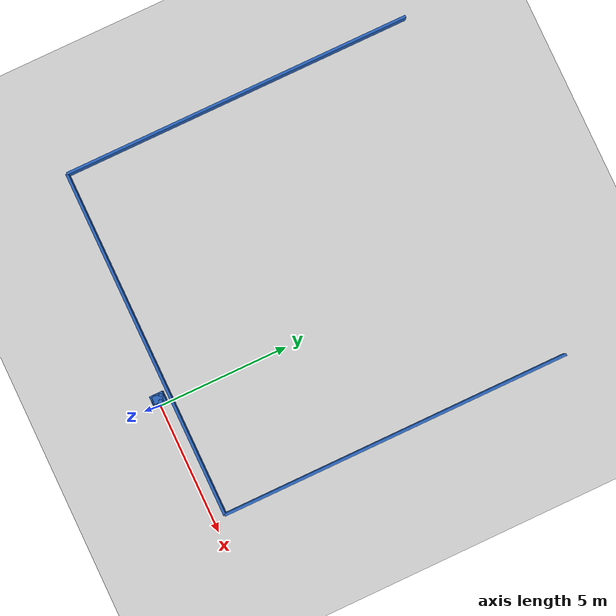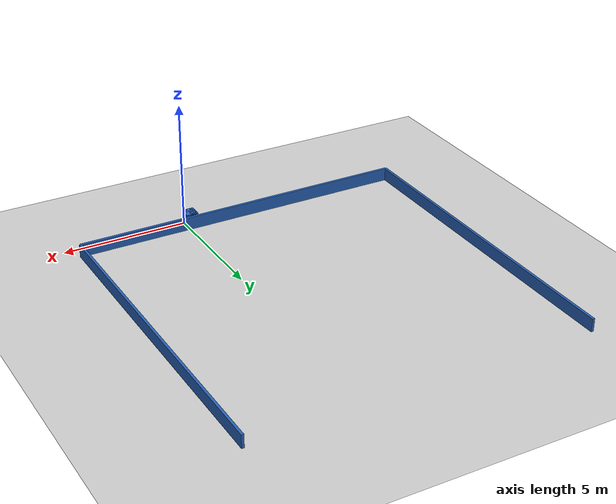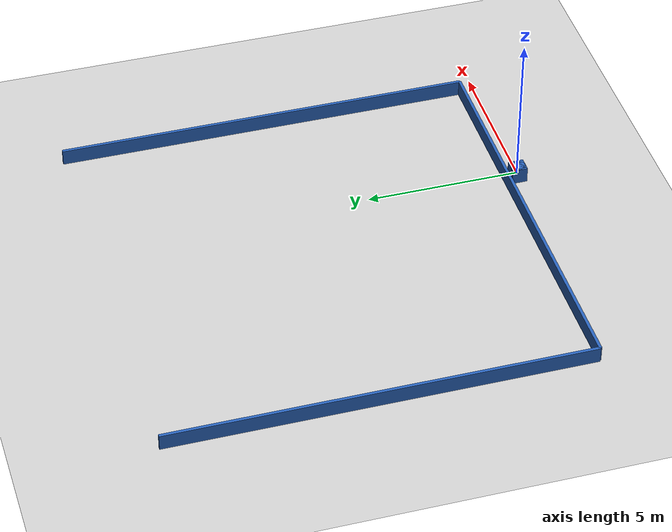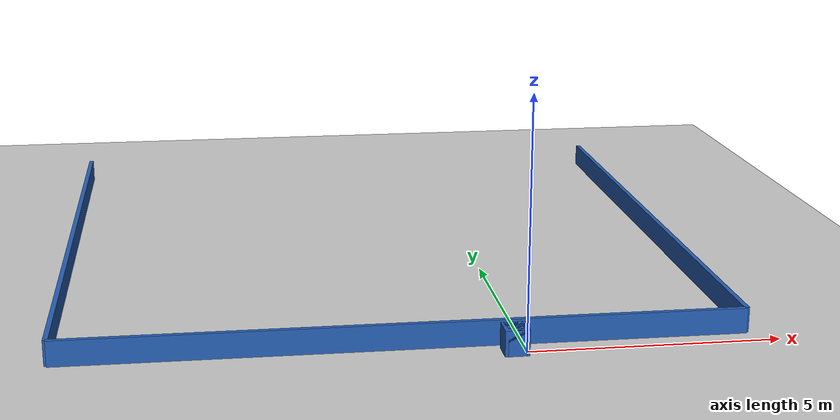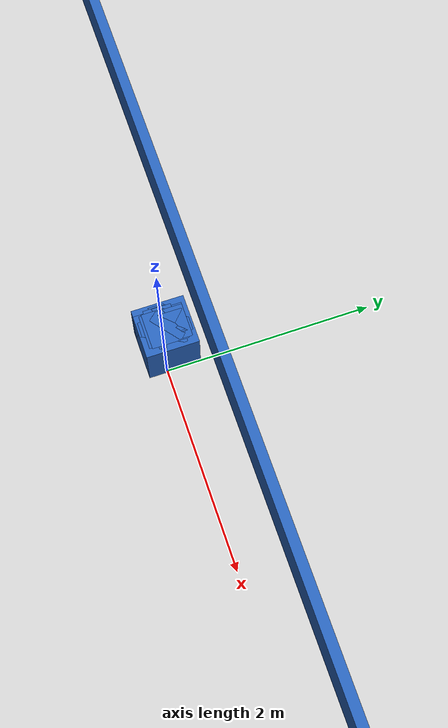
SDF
<?xml version="1.0" ?>
    <sdf version="1.5">
      <world name="default">
        <!-- A global light source -->
        <include>
          <uri>model://sun</uri>
        </include>
        <!-- A ground plane -->
        <include>
          <uri>model://ground_plane</uri>
        </include>

    <model name='libopen_space_final_T2B_77_83'>
      <static>1</static>
      <pose frame=''>-0.225000 0.075000 0.000000 0.000000 0.000000 0.000000</pose>
      <link name='link'>
        <inertial>
          <mass>1</mass>
          <inertia>
            <ixx>0.145833</ixx>
            <ixy>0</ixy>
            <ixz>0</ixz>
            <iyy>0.145833</iyy>
            <iyz>0</iyz>
            <izz>0.125</izz>
          </inertia>
        </inertial>
        <collision name='collision'>
          <geometry>
            <box>
              <size>0.48 0.50 1</size>
            </box>
          </geometry>
          <max_contacts>10</max_contacts>
          <surface>
            <contact>
              <ode/>
            </contact>
            <bounce/>
            <friction>
              <torsional>
                <ode/>
              </torsional>
              <ode/>
            </friction>
          </surface>
        </collision>
        <visual name='visual'>
          <geometry>
            <box>
              <size>0.48 0.50 1</size>
            </box>
          </geometry>
	    <material>
              <ambient>0.152000 0.379000 0.720000 1</ambient>
	      <diffuse>0.152000 0.379000 0.720000 1</diffuse>
          </material>
          <material>
            <script>
              <name>Gazebo/Grey</name>
              <uri>file://media/materials/scripts/gazebo.material</uri>
            </script>
          </material>
        </visual>
        <self_collide>0</self_collide>
        <kinematic>0</kinematic>
        <gravity>1</gravity>
      </link>
      <plugin name='libopen_space_final_T2B_77_83' filename='libopen_space_final_T2B_77_83.so'/>
    </model>

    <model name='libopen_space_final_T2B_148_40'>
      <static>1</static>
      <pose frame=''>-0.225000 0.075000 0.000000 0.000000 0.000000 0.000000</pose>
      <link name='link'>
        <inertial>
          <mass>1</mass>
          <inertia>
            <ixx>0.145833</ixx>
            <ixy>0</ixy>
            <ixz>0</ixz>
            <iyy>0.145833</iyy>
            <iyz>0</iyz>
            <izz>0.125</izz>
          </inertia>
        </inertial>
        <collision name='collision'>
          <geometry>
            <box>
              <size>0.22 0.46 1</size>
            </box>
          </geometry>
          <max_contacts>10</max_contacts>
          <surface>
            <contact>
              <ode/>
            </contact>
            <bounce/>
            <friction>
              <torsional>
                <ode/>
              </torsional>
              <ode/>
            </friction>
          </surface>
        </collision>
        <visual name='visual'>
          <geometry>
            <box>
              <size>0.22 0.46 1</size>
            </box>
          </geometry>
	    <material>
              <ambient>0.152000 0.379000 0.720000 1</ambient>
	      <diffuse>0.152000 0.379000 0.720000 1</diffuse>
          </material>
          <material>
            <script>
              <name>Gazebo/Grey</name>
              <uri>file://media/materials/scripts/gazebo.material</uri>
            </script>
          </material>
        </visual>
        <self_collide>0</self_collide>
        <kinematic>0</kinematic>
        <gravity>1</gravity>
      </link>
      <plugin name='libopen_space_final_T2B_148_40' filename='libopen_space_final_T2B_148_40.so'/>
    </model>

    <model name='libopen_space_final_T2B_94_31'>
      <static>1</static>
      <pose frame=''>-0.225000 0.075000 0.000000 0.000000 0.000000 0.000000</pose>
      <link name='link'>
        <inertial>
          <mass>1</mass>
          <inertia>
            <ixx>0.145833</ixx>
            <ixy>0</ixy>
            <ixz>0</ixz>
            <iyy>0.145833</iyy>
            <iyz>0</iyz>
            <izz>0.125</izz>
          </inertia>
        </inertial>
        <collision name='collision'>
          <geometry>
            <box>
              <size>0.32 0.23 1</size>
            </box>
          </geometry>
          <max_contacts>10</max_contacts>
          <surface>
            <contact>
              <ode/>
            </contact>
            <bounce/>
            <friction>
              <torsional>
                <ode/>
              </torsional>
              <ode/>
            </friction>
          </surface>
        </collision>
        <visual name='visual'>
          <geometry>
            <box>
              <size>0.32 0.23 1</size>
            </box>
          </geometry>
	    <material>
              <ambient>0.152000 0.379000 0.720000 1</ambient>
	      <diffuse>0.152000 0.379000 0.720000 1</diffuse>
          </material>
          <material>
            <script>
              <name>Gazebo/Grey</name>
              <uri>file://media/materials/scripts/gazebo.material</uri>
            </script>
          </material>
        </visual>
        <self_collide>0</self_collide>
        <kinematic>0</kinematic>
        <gravity>1</gravity>
      </link>
      <plugin name='libopen_space_final_T2B_94_31' filename='libopen_space_final_T2B_94_31.so'/>
    </model>

    <model name='libopen_space_final_T2B_61_96'>
      <static>1</static>
      <pose frame=''>-0.225000 0.075000 0.000000 0.000000 0.000000 0.000000</pose>
      <link name='link'>
        <inertial>
          <mass>1</mass>
          <inertia>
            <ixx>0.145833</ixx>
            <ixy>0</ixy>
            <ixz>0</ixz>
            <iyy>0.145833</iyy>
            <iyz>0</iyz>
            <izz>0.125</izz>
          </inertia>
        </inertial>
        <collision name='collision'>
          <geometry>
            <box>
              <size>0.35 0.35 1</size>
            </box>
          </geometry>
          <max_contacts>10</max_contacts>
          <surface>
            <contact>
              <ode/>
            </contact>
            <bounce/>
            <friction>
              <torsional>
                <ode/>
              </torsional>
              <ode/>
            </friction>
          </surface>
        </collision>
        <visual name='visual'>
          <geometry>
            <box>
              <size>0.35 0.35 1</size>
            </box>
          </geometry>
	    <material>
              <ambient>0.152000 0.379000 0.720000 1</ambient>
	      <diffuse>0.152000 0.379000 0.720000 1</diffuse>
          </material>
          <material>
            <script>
              <name>Gazebo/Grey</name>
              <uri>file://media/materials/scripts/gazebo.material</uri>
            </script>
          </material>
        </visual>
        <self_collide>0</self_collide>
        <kinematic>0</kinematic>
        <gravity>1</gravity>
      </link>
      <plugin name='libopen_space_final_T2B_61_96' filename='libopen_space_final_T2B_61_96.so'/>
    </model>

    <model name='libopen_space_final_T2B_91_57'>
      <static>1</static>
      <pose frame=''>-0.225000 0.075000 0.000000 0.000000 0.000000 0.000000</pose>
      <link name='link'>
        <inertial>
          <mass>1</mass>
          <inertia>
            <ixx>0.145833</ixx>
            <ixy>0</ixy>
            <ixz>0</ixz>
            <iyy>0.145833</iyy>
            <iyz>0</iyz>
            <izz>0.125</izz>
          </inertia>
        </inertial>
        <collision name='collision'>
          <geometry>
            <box>
              <size>0.36 0.42 1</size>
            </box>
          </geometry>
          <max_contacts>10</max_contacts>
          <surface>
            <contact>
              <ode/>
            </contact>
            <bounce/>
            <friction>
              <torsional>
                <ode/>
              </torsional>
              <ode/>
            </friction>
          </surface>
        </collision>
        <visual name='visual'>
          <geometry>
            <box>
              <size>0.36 0.42 1</size>
            </box>
          </geometry>
	    <material>
              <ambient>0.152000 0.379000 0.720000 1</ambient>
	      <diffuse>0.152000 0.379000 0.720000 1</diffuse>
          </material>
          <material>
            <script>
              <name>Gazebo/Grey</name>
              <uri>file://media/materials/scripts/gazebo.material</uri>
            </script>
          </material>
        </visual>
        <self_collide>0</self_collide>
        <kinematic>0</kinematic>
        <gravity>1</gravity>
      </link>
      <plugin name='libopen_space_final_T2B_91_57' filename='libopen_space_final_T2B_91_57.so'/>
    </model>

    <model name='libopen_space_final_T2B_51_1'>
      <static>1</static>
      <pose frame=''>-0.225000 0.075000 0.000000 0.000000 0.000000 0.000000</pose>
      <link name='link'>
        <inertial>
          <mass>1</mass>
          <inertia>
            <ixx>0.145833</ixx>
            <ixy>0</ixy>
            <ixz>0</ixz>
            <iyy>0.145833</iyy>
            <iyz>0</iyz>
            <izz>0.125</izz>
          </inertia>
        </inertial>
        <collision name='collision'>
          <geometry>
            <box>
              <size>0.44 0.19 1</size>
            </box>
          </geometry>
          <max_contacts>10</max_contacts>
          <surface>
            <contact>
              <ode/>
            </contact>
            <bounce/>
            <friction>
              <torsional>
                <ode/>
              </torsional>
              <ode/>
            </friction>
          </surface>
        </collision>
        <visual name='visual'>
          <geometry>
            <box>
              <size>0.44 0.19 1</size>
            </box>
          </geometry>
	    <material>
              <ambient>0.152000 0.379000 0.720000 1</ambient>
	      <diffuse>0.152000 0.379000 0.720000 1</diffuse>
          </material>
          <material>
            <script>
              <name>Gazebo/Grey</name>
              <uri>file://media/materials/scripts/gazebo.material</uri>
            </script>
          </material>
        </visual>
        <self_collide>0</self_collide>
        <kinematic>0</kinematic>
        <gravity>1</gravity>
      </link>
      <plugin name='libopen_space_final_T2B_51_1' filename='libopen_space_final_T2B_51_1.so'/>
    </model>

    <model name='libopen_space_final_T2B_118_43'>
      <static>1</static>
      <pose frame=''>-0.225000 0.075000 0.000000 0.000000 0.000000 0.000000</pose>
      <link name='link'>
        <inertial>
          <mass>1</mass>
          <inertia>
            <ixx>0.145833</ixx>
            <ixy>0</ixy>
            <ixz>0</ixz>
            <iyy>0.145833</iyy>
            <iyz>0</iyz>
            <izz>0.125</izz>
          </inertia>
        </inertial>
        <collision name='collision'>
          <geometry>
            <box>
              <size>0.33 0.40 1</size>
            </box>
          </geometry>
          <max_contacts>10</max_contacts>
          <surface>
            <contact>
              <ode/>
            </contact>
            <bounce/>
            <friction>
              <torsional>
                <ode/>
              </torsional>
              <ode/>
            </friction>
          </surface>
        </collision>
        <visual name='visual'>
          <geometry>
            <box>
              <size>0.33 0.40 1</size>
            </box>
          </geometry>
	    <material>
              <ambient>0.152000 0.379000 0.720000 1</ambient>
	      <diffuse>0.152000 0.379000 0.720000 1</diffuse>
          </material>
          <material>
            <script>
              <name>Gazebo/Grey</name>
              <uri>file://media/materials/scripts/gazebo.material</uri>
            </script>
          </material>
        </visual>
        <self_collide>0</self_collide>
        <kinematic>0</kinematic>
        <gravity>1</gravity>
      </link>
      <plugin name='libopen_space_final_T2B_118_43' filename='libopen_space_final_T2B_118_43.so'/>
    </model>

    <model name='libopen_space_final_T2B_120_45'>
      <static>1</static>
      <pose frame=''>-0.225000 0.075000 0.000000 0.000000 0.000000 0.000000</pose>
      <link name='link'>
        <inertial>
          <mass>1</mass>
          <inertia>
            <ixx>0.145833</ixx>
            <ixy>0</ixy>
            <ixz>0</ixz>
            <iyy>0.145833</iyy>
            <iyz>0</iyz>
            <izz>0.125</izz>
          </inertia>
        </inertial>
        <collision name='collision'>
          <geometry>
            <box>
              <size>0.20 0.36 1</size>
            </box>
          </geometry>
          <max_contacts>10</max_contacts>
          <surface>
            <contact>
              <ode/>
            </contact>
            <bounce/>
            <friction>
              <torsional>
                <ode/>
              </torsional>
              <ode/>
            </friction>
          </surface>
        </collision>
        <visual name='visual'>
          <geometry>
            <box>
              <size>0.20 0.36 1</size>
            </box>
          </geometry>
	    <material>
              <ambient>0.152000 0.379000 0.720000 1</ambient>
	      <diffuse>0.152000 0.379000 0.720000 1</diffuse>
          </material>
          <material>
            <script>
              <name>Gazebo/Grey</name>
              <uri>file://media/materials/scripts/gazebo.material</uri>
            </script>
          </material>
        </visual>
        <self_collide>0</self_collide>
        <kinematic>0</kinematic>
        <gravity>1</gravity>
      </link>
      <plugin name='libopen_space_final_T2B_120_45' filename='libopen_space_final_T2B_120_45.so'/>
    </model>

    <model name='libopen_space_final_T2B_83_61'>
      <static>1</static>
      <pose frame=''>-0.225000 0.075000 0.000000 0.000000 0.000000 0.000000</pose>
      <link name='link'>
        <inertial>
          <mass>1</mass>
          <inertia>
            <ixx>0.145833</ixx>
            <ixy>0</ixy>
            <ixz>0</ixz>
            <iyy>0.145833</iyy>
            <iyz>0</iyz>
            <izz>0.125</izz>
          </inertia>
        </inertial>
        <collision name='collision'>
          <geometry>
            <box>
              <size>0.36 0.50 1</size>
            </box>
          </geometry>
          <max_contacts>10</max_contacts>
          <surface>
            <contact>
              <ode/>
            </contact>
            <bounce/>
            <friction>
              <torsional>
                <ode/>
              </torsional>
              <ode/>
            </friction>
          </surface>
        </collision>
        <visual name='visual'>
          <geometry>
            <box>
              <size>0.36 0.50 1</size>
            </box>
          </geometry>
	    <material>
              <ambient>0.152000 0.379000 0.720000 1</ambient>
	      <diffuse>0.152000 0.379000 0.720000 1</diffuse>
          </material>
          <material>
            <script>
              <name>Gazebo/Grey</name>
              <uri>file://media/materials/scripts/gazebo.material</uri>
            </script>
          </material>
        </visual>
        <self_collide>0</self_collide>
        <kinematic>0</kinematic>
        <gravity>1</gravity>
      </link>
      <plugin name='libopen_space_final_T2B_83_61' filename='libopen_space_final_T2B_83_61.so'/>
    </model>

    <model name='libopen_space_final_T2B_112_28'>
      <static>1</static>
      <pose frame=''>-0.225000 0.075000 0.000000 0.000000 0.000000 0.000000</pose>
      <link name='link'>
        <inertial>
          <mass>1</mass>
          <inertia>
            <ixx>0.145833</ixx>
            <ixy>0</ixy>
            <ixz>0</ixz>
            <iyy>0.145833</iyy>
            <iyz>0</iyz>
            <izz>0.125</izz>
          </inertia>
        </inertial>
        <collision name='collision'>
          <geometry>
            <box>
              <size>0.33 0.42 1</size>
            </box>
          </geometry>
          <max_contacts>10</max_contacts>
          <surface>
            <contact>
              <ode/>
            </contact>
            <bounce/>
            <friction>
              <torsional>
                <ode/>
              </torsional>
              <ode/>
            </friction>
          </surface>
        </collision>
        <visual name='visual'>
          <geometry>
            <box>
              <size>0.33 0.42 1</size>
            </box>
          </geometry>
	    <material>
              <ambient>0.152000 0.379000 0.720000 1</ambient>
	      <diffuse>0.152000 0.379000 0.720000 1</diffuse>
          </material>
          <material>
            <script>
              <name>Gazebo/Grey</name>
              <uri>file://media/materials/scripts/gazebo.material</uri>
            </script>
          </material>
        </visual>
        <self_collide>0</self_collide>
        <kinematic>0</kinematic>
        <gravity>1</gravity>
      </link>
      <plugin name='libopen_space_final_T2B_112_28' filename='libopen_space_final_T2B_112_28.so'/>
    </model>

    <model name='libopen_space_final_T2B_125_67'>
      <static>1</static>
      <pose frame=''>-0.225000 0.075000 0.000000 0.000000 0.000000 0.000000</pose>
      <link name='link'>
        <inertial>
          <mass>1</mass>
          <inertia>
            <ixx>0.145833</ixx>
            <ixy>0</ixy>
            <ixz>0</ixz>
            <iyy>0.145833</iyy>
            <iyz>0</iyz>
            <izz>0.125</izz>
          </inertia>
        </inertial>
        <collision name='collision'>
          <geometry>
            <box>
              <size>0.40 0.23 1</size>
            </box>
          </geometry>
          <max_contacts>10</max_contacts>
          <surface>
            <contact>
              <ode/>
            </contact>
            <bounce/>
            <friction>
              <torsional>
                <ode/>
              </torsional>
              <ode/>
            </friction>
          </surface>
        </collision>
        <visual name='visual'>
          <geometry>
            <box>
              <size>0.40 0.23 1</size>
            </box>
          </geometry>
	    <material>
              <ambient>0.152000 0.379000 0.720000 1</ambient>
	      <diffuse>0.152000 0.379000 0.720000 1</diffuse>
          </material>
          <material>
            <script>
              <name>Gazebo/Grey</name>
              <uri>file://media/materials/scripts/gazebo.material</uri>
            </script>
          </material>
        </visual>
        <self_collide>0</self_collide>
        <kinematic>0</kinematic>
        <gravity>1</gravity>
      </link>
      <plugin name='libopen_space_final_T2B_125_67' filename='libopen_space_final_T2B_125_67.so'/>
    </model>

    <model name='libopen_space_final_T2B_103_35'>
      <static>1</static>
      <pose frame=''>-0.225000 0.075000 0.000000 0.000000 0.000000 0.000000</pose>
      <link name='link'>
        <inertial>
          <mass>1</mass>
          <inertia>
            <ixx>0.145833</ixx>
            <ixy>0</ixy>
            <ixz>0</ixz>
            <iyy>0.145833</iyy>
            <iyz>0</iyz>
            <izz>0.125</izz>
          </inertia>
        </inertial>
        <collision name='collision'>
          <geometry>
            <box>
              <size>0.41 0.30 1</size>
            </box>
          </geometry>
          <max_contacts>10</max_contacts>
          <surface>
            <contact>
              <ode/>
            </contact>
            <bounce/>
            <friction>
              <torsional>
                <ode/>
              </torsional>
              <ode/>
            </friction>
          </surface>
        </collision>
        <visual name='visual'>
          <geometry>
            <box>
              <size>0.41 0.30 1</size>
            </box>
          </geometry>
	    <material>
              <ambient>0.152000 0.379000 0.720000 1</ambient>
	      <diffuse>0.152000 0.379000 0.720000 1</diffuse>
          </material>
          <material>
            <script>
              <name>Gazebo/Grey</name>
              <uri>file://media/materials/scripts/gazebo.material</uri>
            </script>
          </material>
        </visual>
        <self_collide>0</self_collide>
        <kinematic>0</kinematic>
        <gravity>1</gravity>
      </link>
      <plugin name='libopen_space_final_T2B_103_35' filename='libopen_space_final_T2B_103_35.so'/>
    </model>

    <model name='libopen_space_final_T2B_57_87'>
      <static>1</static>
      <pose frame=''>-0.225000 0.075000 0.000000 0.000000 0.000000 0.000000</pose>
      <link name='link'>
        <inertial>
          <mass>1</mass>
          <inertia>
            <ixx>0.145833</ixx>
            <ixy>0</ixy>
            <ixz>0</ixz>
            <iyy>0.145833</iyy>
            <iyz>0</iyz>
            <izz>0.125</izz>
          </inertia>
        </inertial>
        <collision name='collision'>
          <geometry>
            <box>
              <size>0.25 0.39 1</size>
            </box>
          </geometry>
          <max_contacts>10</max_contacts>
          <surface>
            <contact>
              <ode/>
            </contact>
            <bounce/>
            <friction>
              <torsional>
                <ode/>
              </torsional>
              <ode/>
            </friction>
          </surface>
        </collision>
        <visual name='visual'>
          <geometry>
            <box>
              <size>0.25 0.39 1</size>
            </box>
          </geometry>
	    <material>
              <ambient>0.152000 0.379000 0.720000 1</ambient>
	      <diffuse>0.152000 0.379000 0.720000 1</diffuse>
          </material>
          <material>
            <script>
              <name>Gazebo/Grey</name>
              <uri>file://media/materials/scripts/gazebo.material</uri>
            </script>
          </material>
        </visual>
        <self_collide>0</self_collide>
        <kinematic>0</kinematic>
        <gravity>1</gravity>
      </link>
      <plugin name='libopen_space_final_T2B_57_87' filename='libopen_space_final_T2B_57_87.so'/>
    </model>

    <model name='libopen_space_final_T2B_112_54'>
      <static>1</static>
      <pose frame=''>-0.225000 0.075000 0.000000 0.000000 0.000000 0.000000</pose>
      <link name='link'>
        <inertial>
          <mass>1</mass>
          <inertia>
            <ixx>0.145833</ixx>
            <ixy>0</ixy>
            <ixz>0</ixz>
            <iyy>0.145833</iyy>
            <iyz>0</iyz>
            <izz>0.125</izz>
          </inertia>
        </inertial>
        <collision name='collision'>
          <geometry>
            <box>
              <size>0.15 0.14 1</size>
            </box>
          </geometry>
          <max_contacts>10</max_contacts>
          <surface>
            <contact>
              <ode/>
            </contact>
            <bounce/>
            <friction>
              <torsional>
                <ode/>
              </torsional>
              <ode/>
            </friction>
          </surface>
        </collision>
        <visual name='visual'>
          <geometry>
            <box>
              <size>0.15 0.14 1</size>
            </box>
          </geometry>
	    <material>
              <ambient>0.152000 0.379000 0.720000 1</ambient>
	      <diffuse>0.152000 0.379000 0.720000 1</diffuse>
          </material>
          <material>
            <script>
              <name>Gazebo/Grey</name>
              <uri>file://media/materials/scripts/gazebo.material</uri>
            </script>
          </material>
        </visual>
        <self_collide>0</self_collide>
        <kinematic>0</kinematic>
        <gravity>1</gravity>
      </link>
      <plugin name='libopen_space_final_T2B_112_54' filename='libopen_space_final_T2B_112_54.so'/>
    </model>

        <model name='bottom_wall'>
          <static>1</static>
          <pose frame=''>-2.25 0.5 0.000000 0.000000 0.000000 1.57079632</pose>
          <link name='link'>
            <inertial>
            <mass>1</mass>
            <inertia>
              <ixx>0.145833</ixx>
              <ixy>0</ixy>
              <ixz>0</ixz>
              <iyy>0.145833</iyy>
              <iyz>0</iyz>
              <izz>0.125</izz>
            </inertia>
            </inertial>
            <collision name='collision'>
            <geometry>
              <box>
              <size>0.1 13.5 1</size>
              </box>
            </geometry>
            <max_contacts>10</max_contacts>
            <surface>
              <contact>
              <ode/>
              </contact>
              <bounce/>
              <friction>
              <torsional>
                <ode/>
              </torsional>
              <ode/>
              </friction>
            </surface>
            </collision>
            <visual name='visual'>
            <geometry>
              <box>
              <size>0.1 13.5 1</size>
              </box>
            </geometry>
            <material>
              <ambient>0.152000 0.379000 0.720000 1</ambient>
            <diffuse>0.152000 0.379000 0.720000 1</diffuse>
            </material>
            <material>
              <script>
              <name>Gazebo/Grey</name>
              <uri>file://media/materials/scripts/gazebo.material</uri>
              </script>
            </material>
            </visual>
            <self_collide>0</self_collide>
            <kinematic>0</kinematic>
            <gravity>1</gravity>
          </link>
        </model>

        <model name='left_wall'>
          <static>1</static>
          <pose frame=''>-9 7.25 0.000000 0.000000 0.000000 0.000000</pose>
          <link name='link'>
            <inertial>
            <mass>1</mass>
            <inertia>
              <ixx>0.145833</ixx>
              <ixy>0</ixy>
              <ixz>0</ixz>
              <iyy>0.145833</iyy>
              <iyz>0</iyz>
              <izz>0.125</izz>
            </inertia>
            </inertial>
            <collision name='collision'>
            <geometry>
              <box>
              <size>0.1 13.5 1</size>
              </box>
            </geometry>
            <max_contacts>10</max_contacts>
            <surface>
              <contact>
              <ode/>
              </contact>
              <bounce/>
              <friction>
              <torsional>
                <ode/>
              </torsional>
              <ode/>
              </friction>
            </surface>
            </collision>
            <visual name='visual'>
            <geometry>
              <box>
              <size>0.1 13.5 1</size>
              </box>
            </geometry>
            <material>
              <ambient>0.152000 0.379000 0.720000 1</ambient>
            <diffuse>0.152000 0.379000 0.720000 1</diffuse>
            </material>
            <material>
              <script>
              <name>Gazebo/Grey</name>
              <uri>file://media/materials/scripts/gazebo.material</uri>
              </script>
            </material>
            </visual>
            <self_collide>0</self_collide>
            <kinematic>0</kinematic>
            <gravity>1</gravity>
          </link>
        </model>

        <model name='right_wall'>
          <static>1</static>
          <pose frame=''>4.5 7.25 0.000000 0.000000 0.000000 0.000000</pose>
          <link name='link'>
            <inertial>
            <mass>1</mass>
            <inertia>
              <ixx>0.145833</ixx>
              <ixy>0</ixy>
              <ixz>0</ixz>
              <iyy>0.145833</iyy>
              <iyz>0</iyz>
              <izz>0.125</izz>
            </inertia>
            </inertial>
            <collision name='collision'>
            <geometry>
              <box>
              <size>0.1 13.5 1</size>
              </box>
            </geometry>
            <max_contacts>10</max_contacts>
            <surface>
              <contact>
              <ode/>
              </contact>
              <bounce/>
              <friction>
              <torsional>
                <ode/>
              </torsional>
              <ode/>
              </friction>
            </surface>
            </collision>
            <visual name='visual'>
            <geometry>
              <box>
              <size>0.1 13.5 1</size>
              </box>
            </geometry>
            <material>
              <ambient>0.152000 0.379000 0.720000 1</ambient>
            <diffuse>0.152000 0.379000 0.720000 1</diffuse>
            </material>
            <material>
              <script>
              <name>Gazebo/Grey</name>
              <uri>file://media/materials/scripts/gazebo.material</uri>
              </script>
            </material>
            </visual>
            <self_collide>0</self_collide>
            <kinematic>0</kinematic>
            <gravity>1</gravity>
          </link>
        </model>

      </world>
    </sdf>"
